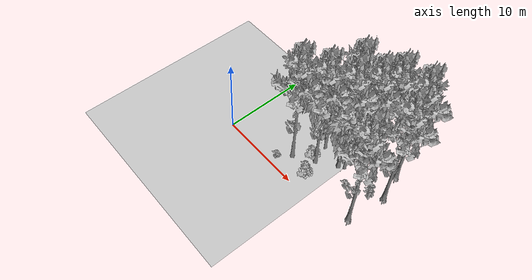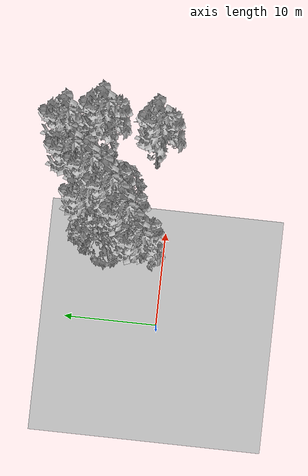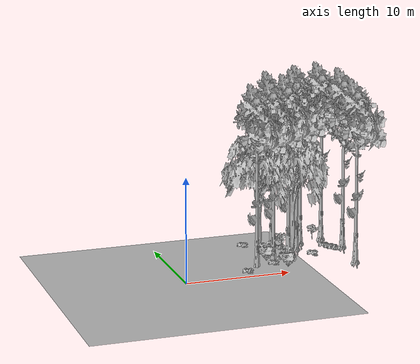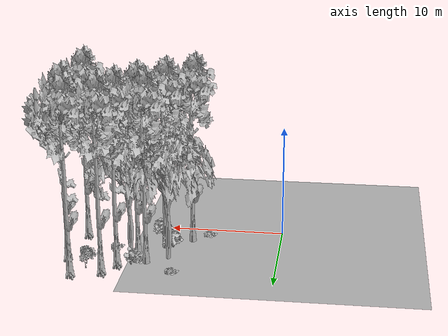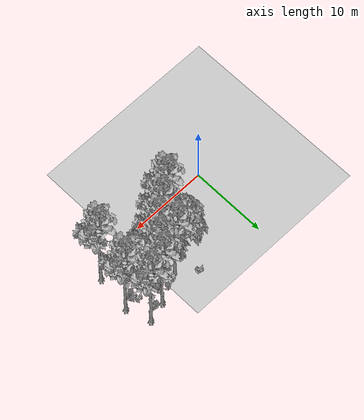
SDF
<sdf version="1.7">
 <world name="default">
  <model name="ground_plane">
   <static>1</static>
   <link name="link">
    <collision name="collision">
     <pose>-50 0 0 0 -0 0</pose>
     <geometry><plane><normal>0 0 1</normal><size>80 80</size></plane></geometry>
     <surface><contact><ode><min_depth>0.01</min_depth><max_vel>0</max_vel></ode></contact></surface>
    </collision>
    <visual name="grass">
     <cast_shadows>0</cast_shadows>
     <geometry>
      <mesh>
       <scale>0.46714285714285714 0.46714285714285714 0.1</scale>
       <uri>file://grass_plane/meshes/grass_plane.dae</uri>
      </mesh>
     </geometry>
    </visual>
   </link>
  </model>
  <model name="Tree 17">
   <static>1</static>
   <pose>18.053022976018823 6.4510136019922655 0 1.57079 -0 0</pose>
   <link name="link">
    <collision name="collision">
     <geometry><mesh><scale>3.5 5 3.5</scale><uri>model://tree_9/meshes/tree_9.obj</uri></mesh></geometry>
    </collision>
    <visual name="visual">
     <geometry><mesh><scale>3.5 5 3.5</scale><uri>model://tree_9/meshes/tree_9.obj</uri></mesh></geometry>
    </visual>
   </link>
  </model>
  <model name="Tree 55">
   <static>1</static>
   <pose>9.205574856765217 6.101505186585889 0 1.57079 -0 0</pose>
   <link name="link">
    <collision name="collision">
     <geometry><mesh><scale>3.5 5 3.5</scale><uri>model://tree_2/meshes/tree_2.obj</uri></mesh></geometry>
    </collision>
    <visual name="visual">
     <geometry><mesh><scale>3.5 5 3.5</scale><uri>model://tree_2/meshes/tree_2.obj</uri></mesh></geometry>
    </visual>
   </link>
  </model>
  <model name="Tree 190">
   <static>1</static>
   <pose>12.045400489547873 5.522182233552897 0 1.57079 -0 0</pose>
   <link name="link">
    <collision name="collision">
     <geometry><mesh><scale>3.5 5 3.5</scale><uri>model://tree_9/meshes/tree_9.obj</uri></mesh></geometry>
    </collision>
    <visual name="visual">
     <geometry><mesh><scale>3.5 5 3.5</scale><uri>model://tree_9/meshes/tree_9.obj</uri></mesh></geometry>
    </visual>
   </link>
  </model>
  <model name="Tree 197">
   <static>1</static>
   <pose>14.537940221593445 8.817002358458012 0 1.57079 -0 0</pose>
   <link name="link">
    <collision name="collision">
     <geometry><mesh><scale>3.5 5 3.5</scale><uri>model://tree_9/meshes/tree_9.obj</uri></mesh></geometry>
    </collision>
    <visual name="visual">
     <geometry><mesh><scale>3.5 5 3.5</scale><uri>model://tree_9/meshes/tree_9.obj</uri></mesh></geometry>
    </visual>
   </link>
  </model>
  <model name="Tree 411">
   <static>1</static>
   <pose>11.006457141442716 7.253510158952672 0 1.57079 -0 0</pose>
   <link name="link">
    <collision name="collision">
     <geometry><mesh><scale>3.5 5 3.5</scale><uri>model://tree_9/meshes/tree_9.obj</uri></mesh></geometry>
    </collision>
    <visual name="visual">
     <geometry><mesh><scale>3.5 5 3.5</scale><uri>model://tree_9/meshes/tree_9.obj</uri></mesh></geometry>
    </visual>
   </link>
  </model>
  <model name="Tree 478">
   <static>1</static>
   <pose>17.033547770013783 9.515905085928807 0 1.57079 -0 0</pose>
   <link name="link">
    <collision name="collision">
     <geometry><mesh><scale>3.5 5 3.5</scale><uri>model://tree_9/meshes/tree_9.obj</uri></mesh></geometry>
    </collision>
    <visual name="visual">
     <geometry><mesh><scale>3.5 5 3.5</scale><uri>model://tree_9/meshes/tree_9.obj</uri></mesh></geometry>
    </visual>
   </link>
  </model>
  <model name="Tree 519">
   <static>1</static>
   <pose>17.42717888782058 1.7141793179587594 0 1.57079 -0 0</pose>
   <link name="link">
    <collision name="collision">
     <geometry><mesh><scale>3.5 5 3.5</scale><uri>model://tree_9/meshes/tree_9.obj</uri></mesh></geometry>
    </collision>
    <visual name="visual">
     <geometry><mesh><scale>3.5 5 3.5</scale><uri>model://tree_9/meshes/tree_9.obj</uri></mesh></geometry>
    </visual>
   </link>
  </model>
  <model name="Tree 561">
   <static>1</static>
   <pose>13.538126020674987 7.259210411255388 0 1.57079 -0 0</pose>
   <link name="link">
    <collision name="collision">
     <geometry><mesh><scale>3.5 5 3.5</scale><uri>model://tree_9/meshes/tree_9.obj</uri></mesh></geometry>
    </collision>
    <visual name="visual">
     <geometry><mesh><scale>3.5 5 3.5</scale><uri>model://tree_9/meshes/tree_9.obj</uri></mesh></geometry>
    </visual>
   </link>
  </model>
  <model name="Tree 564">
   <static>1</static>
   <pose>12.538143825352748 5.876665970777097 0 1.57079 -0 0</pose>
   <link name="link">
    <collision name="collision">
     <geometry><mesh><scale>3.5 5 3.5</scale><uri>model://tree_2/meshes/tree_2.obj</uri></mesh></geometry>
    </collision>
    <visual name="visual">
     <geometry><mesh><scale>3.5 5 3.5</scale><uri>model://tree_2/meshes/tree_2.obj</uri></mesh></geometry>
    </visual>
   </link>
  </model>
  <model name="Tree 596">
   <static>1</static>
   <pose>7.763644299139038 2.4841248706169665 0 1.57079 -0 0</pose>
   <link name="link">
    <collision name="collision">
     <geometry><mesh><scale>3.5 5 3.5</scale><uri>model://tree_9/meshes/tree_9.obj</uri></mesh></geometry>
    </collision>
    <visual name="visual">
     <geometry><mesh><scale>3.5 5 3.5</scale><uri>model://tree_9/meshes/tree_9.obj</uri></mesh></geometry>
    </visual>
   </link>
  </model>
  <model name="Tree 613">
   <static>1</static>
   <pose>9.939913419067018 3.962142114491016 0 1.57079 -0 0</pose>
   <link name="link">
    <collision name="collision">
     <geometry><mesh><scale>3.5 5 3.5</scale><uri>model://tree_9/meshes/tree_9.obj</uri></mesh></geometry>
    </collision>
    <visual name="visual">
     <geometry><mesh><scale>3.5 5 3.5</scale><uri>model://tree_9/meshes/tree_9.obj</uri></mesh></geometry>
    </visual>
   </link>
  </model>
  <model name="Bush 46">
   <static>1</static>
   <pose>16.0835108891376 6.4180532698939174 0 1.57079 -0 0</pose>
   <link name="link">
    <collision name="collision">
     <geometry><mesh><scale>2 2 2</scale><uri>model://bush_2/meshes/bush_2.obj</uri></mesh></geometry>
     <surface><contact><collide_without_contact>false</collide_without_contact></contact></surface>
    </collision>
    <visual name="visual">
     <geometry><mesh><scale>2 2 2</scale><uri>model://bush_2/meshes/bush_2.obj</uri></mesh></geometry>
    </visual>
   </link>
  </model>
  <model name="Bush 53">
   <static>1</static>
   <pose>9.275049015376027 3.9330727910347036 0 1.57079 -0 0</pose>
   <link name="link">
    <collision name="collision">
     <geometry><mesh><scale>2 2 2</scale><uri>model://bush_1/meshes/bush_1.obj</uri></mesh></geometry>
     <surface><contact><collide_without_contact>false</collide_without_contact></contact></surface>
    </collision>
    <visual name="visual">
     <geometry><mesh><scale>2 2 2</scale><uri>model://bush_1/meshes/bush_1.obj</uri></mesh></geometry>
    </visual>
   </link>
  </model>
  <model name="Bush 62">
   <static>1</static>
   <pose>6.423000289255235 1.2102889457551314 0 1.57079 -0 0</pose>
   <link name="link">
    <collision name="collision">
     <geometry><mesh><scale>2 2 2</scale><uri>model://bush_2/meshes/bush_2.obj</uri></mesh></geometry>
     <surface><contact><collide_without_contact>false</collide_without_contact></contact></surface>
    </collision>
    <visual name="visual">
     <geometry><mesh><scale>2 2 2</scale><uri>model://bush_2/meshes/bush_2.obj</uri></mesh></geometry>
    </visual>
   </link>
  </model>
  <model name="Bush 96">
   <static>1</static>
   <pose>15.857149415333573 8.826219940091285 0 1.57079 -0 0</pose>
   <link name="link">
    <collision name="collision">
     <geometry><mesh><scale>2 2 2</scale><uri>model://bush_5/meshes/bush_5.obj</uri></mesh></geometry>
     <surface><contact><collide_without_contact>false</collide_without_contact></contact></surface>
    </collision>
    <visual name="visual">
     <geometry><mesh><scale>2 2 2</scale><uri>model://bush_5/meshes/bush_5.obj</uri></mesh></geometry>
    </visual>
   </link>
  </model>
  <model name="Bush 119">
   <static>1</static>
   <pose>16.4427711432295 5.891237394232192 0 1.57079 -0 0</pose>
   <link name="link">
    <collision name="collision">
     <geometry><mesh><scale>2 2 2</scale><uri>model://bush_2/meshes/bush_2.obj</uri></mesh></geometry>
     <surface><contact><collide_without_contact>false</collide_without_contact></contact></surface>
    </collision>
    <visual name="visual">
     <geometry><mesh><scale>2 2 2</scale><uri>model://bush_2/meshes/bush_2.obj</uri></mesh></geometry>
    </visual>
   </link>
  </model>
  <model name="Bush 186">
   <static>1</static>
   <pose>11.623253236945637 7.049721782703962 0 1.57079 -0 0</pose>
   <link name="link">
    <collision name="collision">
     <geometry><mesh><scale>2 2 2</scale><uri>model://bush_2/meshes/bush_2.obj</uri></mesh></geometry>
     <surface><contact><collide_without_contact>false</collide_without_contact></contact></surface>
    </collision>
    <visual name="visual">
     <geometry><mesh><scale>2 2 2</scale><uri>model://bush_2/meshes/bush_2.obj</uri></mesh></geometry>
    </visual>
   </link>
  </model>
  <model name="Bush 351">
   <static>1</static>
   <pose>8.594603025484403 8.8223816821207 0 1.57079 -0 0</pose>
   <link name="link">
    <collision name="collision">
     <geometry><mesh><scale>2 2 2</scale><uri>model://bush_2/meshes/bush_2.obj</uri></mesh></geometry>
     <surface><contact><collide_without_contact>false</collide_without_contact></contact></surface>
    </collision>
    <visual name="visual">
     <geometry><mesh><scale>2 2 2</scale><uri>model://bush_2/meshes/bush_2.obj</uri></mesh></geometry>
    </visual>
   </link>
  </model>
  <model name="Bush 367">
   <static>1</static>
   <pose>16.659924463348716 5.499985784258428 0 1.57079 -0 0</pose>
   <link name="link">
    <collision name="collision">
     <geometry><mesh><scale>2 2 2</scale><uri>model://bush_2/meshes/bush_2.obj</uri></mesh></geometry>
     <surface><contact><collide_without_contact>false</collide_without_contact></contact></surface>
    </collision>
    <visual name="visual">
     <geometry><mesh><scale>2 2 2</scale><uri>model://bush_2/meshes/bush_2.obj</uri></mesh></geometry>
    </visual>
   </link>
  </model>
  <model name="Bush 469">
   <static>1</static>
   <pose>10.56788798544298 1.5951757612471695 0 1.57079 -0 0</pose>
   <link name="link">
    <collision name="collision">
     <geometry><mesh><scale>2 2 2</scale><uri>model://bush_1/meshes/bush_1.obj</uri></mesh></geometry>
     <surface><contact><collide_without_contact>false</collide_without_contact></contact></surface>
    </collision>
    <visual name="visual">
     <geometry><mesh><scale>2 2 2</scale><uri>model://bush_1/meshes/bush_1.obj</uri></mesh></geometry>
    </visual>
   </link>
  </model>
  <model name="Bush 503">
   <static>1</static>
   <pose>9.568009819949253 2.791792430216617 0 1.57079 -0 0</pose>
   <link name="link">
    <collision name="collision">
     <geometry><mesh><scale>2 2 2</scale><uri>model://bush_2/meshes/bush_2.obj</uri></mesh></geometry>
     <surface><contact><collide_without_contact>false</collide_without_contact></contact></surface>
    </collision>
    <visual name="visual">
     <geometry><mesh><scale>2 2 2</scale><uri>model://bush_2/meshes/bush_2.obj</uri></mesh></geometry>
    </visual>
   </link>
  </model>
  <model name="Bush 508">
   <static>1</static>
   <pose>14.144261803927712 4.47002307255665 0 1.57079 -0 0</pose>
   <link name="link">
    <collision name="collision">
     <geometry><mesh><scale>2 2 2</scale><uri>model://bush_2/meshes/bush_2.obj</uri></mesh></geometry>
     <surface><contact><collide_without_contact>false</collide_without_contact></contact></surface>
    </collision>
    <visual name="visual">
     <geometry><mesh><scale>2 2 2</scale><uri>model://bush_2/meshes/bush_2.obj</uri></mesh></geometry>
    </visual>
   </link>
  </model>
  <model name="Bush 596">
   <static>1</static>
   <pose>12.22530076993683 7.724297181013455 0 1.57079 -0 0</pose>
   <link name="link">
    <collision name="collision">
     <geometry><mesh><scale>2 2 2</scale><uri>model://bush_0/meshes/bush_0.obj</uri></mesh></geometry>
     <surface><contact><collide_without_contact>false</collide_without_contact></contact></surface>
    </collision>
    <visual name="visual">
     <geometry><mesh><scale>2 2 2</scale><uri>model://bush_0/meshes/bush_0.obj</uri></mesh></geometry>
    </visual>
   </link>
  </model>
 </world>
</sdf>
